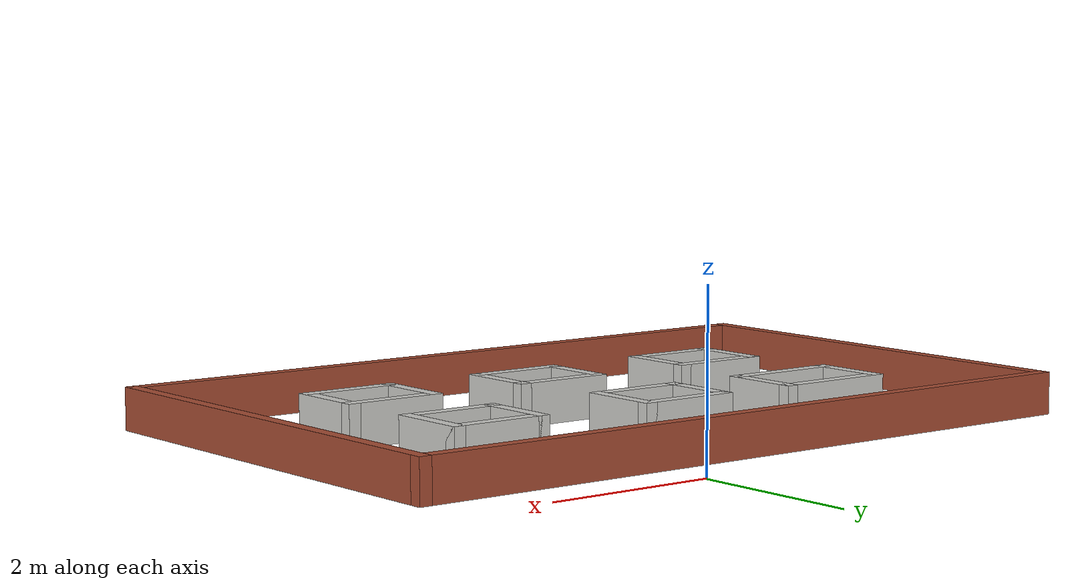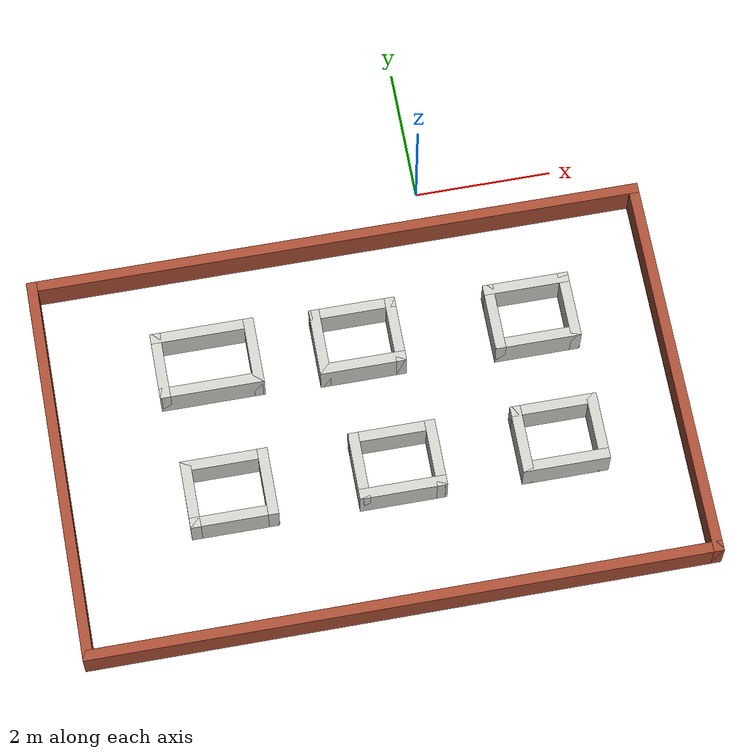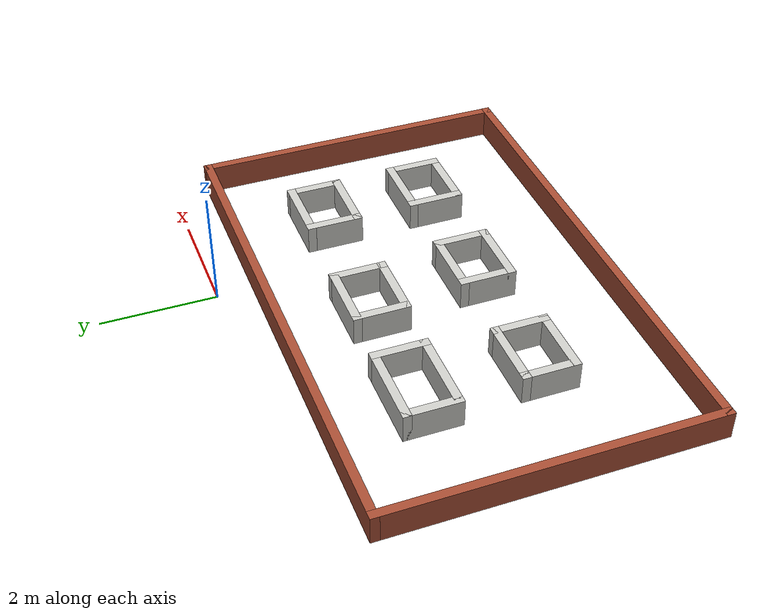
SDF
<?xml version='1.0'?>
<sdf version='1.7'>
  <model name='Maze_1_new'>
    <pose>-1.345 -3.1825 0 0 -0 0</pose>
    <link name='Wall_10'>
      <collision name='Wall_10_Collision'>
        <geometry>
          <box>
            <size>1 0.15 0.5</size>
          </box>
        </geometry>
        <pose>0 0 0.25 0 -0 0</pose>
      </collision>
      <visual name='Wall_10_Visual'>
        <pose>0 0 0.25 0 -0 0</pose>
        <geometry>
          <box>
            <size>1 0.15 0.5</size>
          </box>
        </geometry>
        <material>
          <script>
            <uri>file://media/materials/scripts/gazebo.material</uri>
            <name>Gazebo/CeilingTiled</name>
          </script>
          <ambient>1 1 1 1</ambient>
        </material>
        <meta>
          <layer>0</layer>
        </meta>
      </visual>
      <pose>-1.445 0.9575 0 0 -0 1.5708</pose>
    </link>
    <link name='Wall_11'>
      <collision name='Wall_11_Collision'>
        <geometry>
          <box>
            <size>1.5 0.15 0.5</size>
          </box>
        </geometry>
        <pose>0 0 0.25 0 -0 0</pose>
      </collision>
      <visual name='Wall_11_Visual'>
        <pose>0 0 0.25 0 -0 0</pose>
        <geometry>
          <box>
            <size>1.5 0.15 0.5</size>
          </box>
        </geometry>
        <material>
          <script>
            <uri>file://media/materials/scripts/gazebo.material</uri>
            <name>Gazebo/CeilingTiled</name>
          </script>
          <ambient>1 1 1 1</ambient>
        </material>
        <meta>
          <layer>0</layer>
        </meta>
      </visual>
      <pose>-2.12 1.3825 0 0 -0 3.14159</pose>
    </link>
    <link name='Wall_13'>
      <collision name='Wall_13_Collision'>
        <geometry>
          <box>
            <size>1 0.15 0.5</size>
          </box>
        </geometry>
        <pose>0 0 0.25 0 -0 0</pose>
      </collision>
      <visual name='Wall_13_Visual'>
        <pose>0 0 0.25 0 -0 0</pose>
        <geometry>
          <box>
            <size>1 0.15 0.5</size>
          </box>
        </geometry>
        <material>
          <script>
            <uri>file://media/materials/scripts/gazebo.material</uri>
            <name>Gazebo/CeilingTiled</name>
          </script>
          <ambient>1 1 1 1</ambient>
        </material>
        <meta>
          <layer>0</layer>
        </meta>
      </visual>
      <pose>-2.675 -1.0425 0 0 -0 -1.5708</pose>
    </link>
    <link name='Wall_14'>
      <collision name='Wall_14_Collision'>
        <geometry>
          <box>
            <size>1.25 0.15 0.5</size>
          </box>
        </geometry>
        <pose>0 0 0.25 0 -0 0</pose>
      </collision>
      <visual name='Wall_14_Visual'>
        <pose>0 0 0.25 0 -0 0</pose>
        <geometry>
          <box>
            <size>1.25 0.15 0.5</size>
          </box>
        </geometry>
        <material>
          <script>
            <uri>file://media/materials/scripts/gazebo.material</uri>
            <name>Gazebo/CeilingTiled</name>
          </script>
          <ambient>1 1 1 1</ambient>
        </material>
        <meta>
          <layer>0</layer>
        </meta>
      </visual>
      <pose>-2.125 -1.4675 0 0 -0 0</pose>
    </link>
    <link name='Wall_15'>
      <collision name='Wall_15_Collision'>
        <geometry>
          <box>
            <size>1 0.15 0.5</size>
          </box>
        </geometry>
        <pose>0 0 0.25 0 -0 0</pose>
      </collision>
      <visual name='Wall_15_Visual'>
        <pose>0 0 0.25 0 -0 0</pose>
        <geometry>
          <box>
            <size>1 0.15 0.5</size>
          </box>
        </geometry>
        <material>
          <script>
            <uri>file://media/materials/scripts/gazebo.material</uri>
            <name>Gazebo/CeilingTiled</name>
          </script>
          <ambient>1 1 1 1</ambient>
        </material>
        <meta>
          <layer>0</layer>
        </meta>
      </visual>
      <pose>-1.575 -1.0425 0 0 -0 1.5708</pose>
    </link>
    <link name='Wall_16'>
      <collision name='Wall_16_Collision'>
        <geometry>
          <box>
            <size>1.25 0.15 0.5</size>
          </box>
        </geometry>
        <pose>0 0 0.25 0 -0 0</pose>
      </collision>
      <visual name='Wall_16_Visual'>
        <pose>0 0 0.25 0 -0 0</pose>
        <geometry>
          <box>
            <size>1.25 0.15 0.5</size>
          </box>
        </geometry>
        <material>
          <script>
            <uri>file://media/materials/scripts/gazebo.material</uri>
            <name>Gazebo/CeilingTiled</name>
          </script>
          <ambient>1 1 1 1</ambient>
        </material>
        <meta>
          <layer>0</layer>
        </meta>
      </visual>
      <pose>-2.125 -0.6175 0 0 -0 3.14159</pose>
    </link>
    <link name='Wall_18'>
      <collision name='Wall_18_Collision'>
        <geometry>
          <box>
            <size>1 0.15 0.5</size>
          </box>
        </geometry>
        <pose>0 0 0.25 0 -0 0</pose>
      </collision>
      <visual name='Wall_18_Visual'>
        <pose>0 0 0.25 0 -0 0</pose>
        <geometry>
          <box>
            <size>1 0.15 0.5</size>
          </box>
        </geometry>
        <material>
          <script>
            <uri>file://media/materials/scripts/gazebo.material</uri>
            <name>Gazebo/CeilingTiled</name>
          </script>
          <ambient>1 1 1 1</ambient>
        </material>
        <meta>
          <layer>0</layer>
        </meta>
      </visual>
      <pose>-0.275 -1.0425 0 0 -0 -1.5708</pose>
    </link>
    <link name='Wall_19'>
      <collision name='Wall_19_Collision'>
        <geometry>
          <box>
            <size>1.25 0.15 0.5</size>
          </box>
        </geometry>
        <pose>0 0 0.25 0 -0 0</pose>
      </collision>
      <visual name='Wall_19_Visual'>
        <pose>0 0 0.25 0 -0 0</pose>
        <geometry>
          <box>
            <size>1.25 0.15 0.5</size>
          </box>
        </geometry>
        <material>
          <script>
            <uri>file://media/materials/scripts/gazebo.material</uri>
            <name>Gazebo/CeilingTiled</name>
          </script>
          <ambient>1 1 1 1</ambient>
        </material>
        <meta>
          <layer>0</layer>
        </meta>
      </visual>
      <pose>0.275 -1.4675 0 0 -0 0</pose>
    </link>
    <link name='Wall_20'>
      <collision name='Wall_20_Collision'>
        <geometry>
          <box>
            <size>1 0.15 0.5</size>
          </box>
        </geometry>
        <pose>0 0 0.25 0 -0 0</pose>
      </collision>
      <visual name='Wall_20_Visual'>
        <pose>0 0 0.25 0 -0 0</pose>
        <geometry>
          <box>
            <size>1 0.15 0.5</size>
          </box>
        </geometry>
        <material>
          <script>
            <uri>file://media/materials/scripts/gazebo.material</uri>
            <name>Gazebo/CeilingTiled</name>
          </script>
          <ambient>1 1 1 1</ambient>
        </material>
        <meta>
          <layer>0</layer>
        </meta>
      </visual>
      <pose>0.825 -1.0425 0 0 -0 1.5708</pose>
    </link>
    <link name='Wall_21'>
      <collision name='Wall_21_Collision'>
        <geometry>
          <box>
            <size>1.25 0.15 0.5</size>
          </box>
        </geometry>
        <pose>0 0 0.25 0 -0 0</pose>
      </collision>
      <visual name='Wall_21_Visual'>
        <pose>0 0 0.25 0 -0 0</pose>
        <geometry>
          <box>
            <size>1.25 0.15 0.5</size>
          </box>
        </geometry>
        <material>
          <script>
            <uri>file://media/materials/scripts/gazebo.material</uri>
            <name>Gazebo/CeilingTiled</name>
          </script>
          <ambient>1 1 1 1</ambient>
        </material>
        <meta>
          <layer>0</layer>
        </meta>
      </visual>
      <pose>0.275 -0.6175 0 0 -0 3.14159</pose>
    </link>
    <link name='Wall_23'>
      <collision name='Wall_23_Collision'>
        <geometry>
          <box>
            <size>1 0.15 0.5</size>
          </box>
        </geometry>
        <pose>0 0 0.25 0 -0 0</pose>
      </collision>
      <visual name='Wall_23_Visual'>
        <pose>0 0 0.25 0 -0 0</pose>
        <geometry>
          <box>
            <size>1 0.15 0.5</size>
          </box>
        </geometry>
        <material>
          <script>
            <uri>file://media/materials/scripts/gazebo.material</uri>
            <name>Gazebo/CeilingTiled</name>
          </script>
          <ambient>1 1 1 1</ambient>
        </material>
        <meta>
          <layer>0</layer>
        </meta>
      </visual>
      <pose>2.055 -1.0525 0 0 -0 -1.5708</pose>
    </link>
    <link name='Wall_24'>
      <collision name='Wall_24_Collision'>
        <geometry>
          <box>
            <size>1.25 0.15 0.5</size>
          </box>
        </geometry>
        <pose>0 0 0.25 0 -0 0</pose>
      </collision>
      <visual name='Wall_24_Visual'>
        <pose>0 0 0.25 0 -0 0</pose>
        <geometry>
          <box>
            <size>1.25 0.15 0.5</size>
          </box>
        </geometry>
        <material>
          <script>
            <uri>file://media/materials/scripts/gazebo.material</uri>
            <name>Gazebo/CeilingTiled</name>
          </script>
          <ambient>1 1 1 1</ambient>
        </material>
        <meta>
          <layer>0</layer>
        </meta>
      </visual>
      <pose>2.605 -1.4775 0 0 -0 0</pose>
    </link>
    <link name='Wall_25'>
      <collision name='Wall_25_Collision'>
        <geometry>
          <box>
            <size>1 0.15 0.5</size>
          </box>
        </geometry>
        <pose>0 0 0.25 0 -0 0</pose>
      </collision>
      <visual name='Wall_25_Visual'>
        <pose>0 0 0.25 0 -0 0</pose>
        <geometry>
          <box>
            <size>1 0.15 0.5</size>
          </box>
        </geometry>
        <material>
          <script>
            <uri>file://media/materials/scripts/gazebo.material</uri>
            <name>Gazebo/CeilingTiled</name>
          </script>
          <ambient>1 1 1 1</ambient>
        </material>
        <meta>
          <layer>0</layer>
        </meta>
      </visual>
      <pose>3.155 -1.0525 0 0 -0 1.5708</pose>
    </link>
    <link name='Wall_26'>
      <collision name='Wall_26_Collision'>
        <geometry>
          <box>
            <size>1.25 0.15 0.5</size>
          </box>
        </geometry>
        <pose>0 0 0.25 0 -0 0</pose>
      </collision>
      <visual name='Wall_26_Visual'>
        <pose>0 0 0.25 0 -0 0</pose>
        <geometry>
          <box>
            <size>1.25 0.15 0.5</size>
          </box>
        </geometry>
        <material>
          <script>
            <uri>file://media/materials/scripts/gazebo.material</uri>
            <name>Gazebo/CeilingTiled</name>
          </script>
          <ambient>1 1 1 1</ambient>
        </material>
        <meta>
          <layer>0</layer>
        </meta>
      </visual>
      <pose>2.605 -0.6275 0 0 -0 3.14159</pose>
    </link>
    <link name='Wall_28'>
      <collision name='Wall_28_Collision'>
        <geometry>
          <box>
            <size>1 0.15 0.5</size>
          </box>
        </geometry>
        <pose>0 0 0.25 0 -0 0</pose>
      </collision>
      <visual name='Wall_28_Visual'>
        <pose>0 0 0.25 0 -0 0</pose>
        <geometry>
          <box>
            <size>1 0.15 0.5</size>
          </box>
        </geometry>
        <material>
          <script>
            <uri>file://media/materials/scripts/gazebo.material</uri>
            <name>Gazebo/CeilingTiled</name>
          </script>
          <ambient>1 1 1 1</ambient>
        </material>
        <meta>
          <layer>0</layer>
        </meta>
      </visual>
      <pose>-0.495 0.9175 0 0 -0 -1.5708</pose>
    </link>
    <link name='Wall_29'>
      <collision name='Wall_29_Collision'>
        <geometry>
          <box>
            <size>1.25 0.15 0.5</size>
          </box>
        </geometry>
        <pose>0 0 0.25 0 -0 0</pose>
      </collision>
      <visual name='Wall_29_Visual'>
        <pose>0 0 0.25 0 -0 0</pose>
        <geometry>
          <box>
            <size>1.25 0.15 0.5</size>
          </box>
        </geometry>
        <material>
          <script>
            <uri>file://media/materials/scripts/gazebo.material</uri>
            <name>Gazebo/CeilingTiled</name>
          </script>
          <ambient>1 1 1 1</ambient>
        </material>
        <meta>
          <layer>0</layer>
        </meta>
      </visual>
      <pose>0.055 0.4925 0 0 -0 0</pose>
    </link>
    <link name='Wall_3'>
      <collision name='Wall_3_Collision'>
        <geometry>
          <box>
            <size>5.75 0.15 0.5</size>
          </box>
        </geometry>
        <pose>0 0 0.25 0 -0 0</pose>
      </collision>
      <visual name='Wall_3_Visual'>
        <pose>0 0 0.25 0 -0 0</pose>
        <geometry>
          <box>
            <size>5.75 0.15 0.5</size>
          </box>
        </geometry>
        <material>
          <script>
            <uri>file://media/materials/scripts/gazebo.material</uri>
            <name>Gazebo/Bricks</name>
          </script>
          <ambient>1 1 1 1</ambient>
        </material>
        <meta>
          <layer>0</layer>
        </meta>
      </visual>
      <pose>-4.425 -0.3075 0 0 -0 -1.5708</pose>
    </link>
    <link name='Wall_30'>
      <collision name='Wall_30_Collision'>
        <geometry>
          <box>
            <size>1 0.15 0.5</size>
          </box>
        </geometry>
        <pose>0 0 0.25 0 -0 0</pose>
      </collision>
      <visual name='Wall_30_Visual'>
        <pose>0 0 0.25 0 -0 0</pose>
        <geometry>
          <box>
            <size>1 0.15 0.5</size>
          </box>
        </geometry>
        <material>
          <script>
            <uri>file://media/materials/scripts/gazebo.material</uri>
            <name>Gazebo/CeilingTiled</name>
          </script>
          <ambient>1 1 1 1</ambient>
        </material>
        <meta>
          <layer>0</layer>
        </meta>
      </visual>
      <pose>0.605 0.9175 0 0 -0 1.5708</pose>
    </link>
    <link name='Wall_31'>
      <collision name='Wall_31_Collision'>
        <geometry>
          <box>
            <size>1.25 0.15 0.5</size>
          </box>
        </geometry>
        <pose>0 0 0.25 0 -0 0</pose>
      </collision>
      <visual name='Wall_31_Visual'>
        <pose>0 0 0.25 0 -0 0</pose>
        <geometry>
          <box>
            <size>1.25 0.15 0.5</size>
          </box>
        </geometry>
        <material>
          <script>
            <uri>file://media/materials/scripts/gazebo.material</uri>
            <name>Gazebo/CeilingTiled</name>
          </script>
          <ambient>1 1 1 1</ambient>
        </material>
        <meta>
          <layer>0</layer>
        </meta>
      </visual>
      <pose>0.055 1.3425 0 0 -0 3.14159</pose>
    </link>
    <link name='Wall_33'>
      <collision name='Wall_33_Collision'>
        <geometry>
          <box>
            <size>1 0.15 0.5</size>
          </box>
        </geometry>
        <pose>0 0 0.25 0 -0 0</pose>
      </collision>
      <visual name='Wall_33_Visual'>
        <pose>0 0 0.25 0 -0 0</pose>
        <geometry>
          <box>
            <size>1 0.15 0.5</size>
          </box>
        </geometry>
        <material>
          <script>
            <uri>file://media/materials/scripts/gazebo.material</uri>
            <name>Gazebo/CeilingTiled</name>
          </script>
          <ambient>1 1 1 1</ambient>
        </material>
        <meta>
          <layer>0</layer>
        </meta>
      </visual>
      <pose>2.035 0.8575 0 0 -0 -1.5708</pose>
    </link>
    <link name='Wall_34'>
      <collision name='Wall_34_Collision'>
        <geometry>
          <box>
            <size>1.25 0.15 0.5</size>
          </box>
        </geometry>
        <pose>0 0 0.25 0 -0 0</pose>
      </collision>
      <visual name='Wall_34_Visual'>
        <pose>0 0 0.25 0 -0 0</pose>
        <geometry>
          <box>
            <size>1.25 0.15 0.5</size>
          </box>
        </geometry>
        <material>
          <script>
            <uri>file://media/materials/scripts/gazebo.material</uri>
            <name>Gazebo/CeilingTiled</name>
          </script>
          <ambient>1 1 1 1</ambient>
        </material>
        <meta>
          <layer>0</layer>
        </meta>
      </visual>
      <pose>2.585 0.4325 0 0 -0 0</pose>
    </link>
    <link name='Wall_35'>
      <collision name='Wall_35_Collision'>
        <geometry>
          <box>
            <size>1 0.15 0.5</size>
          </box>
        </geometry>
        <pose>0 0 0.25 0 -0 0</pose>
      </collision>
      <visual name='Wall_35_Visual'>
        <pose>0 0 0.25 0 -0 0</pose>
        <geometry>
          <box>
            <size>1 0.15 0.5</size>
          </box>
        </geometry>
        <material>
          <script>
            <uri>file://media/materials/scripts/gazebo.material</uri>
            <name>Gazebo/CeilingTiled</name>
          </script>
          <ambient>1 1 1 1</ambient>
        </material>
        <meta>
          <layer>0</layer>
        </meta>
      </visual>
      <pose>3.135 0.8575 0 0 -0 1.5708</pose>
    </link>
    <link name='Wall_36'>
      <collision name='Wall_36_Collision'>
        <geometry>
          <box>
            <size>1.25 0.15 0.5</size>
          </box>
        </geometry>
        <pose>0 0 0.25 0 -0 0</pose>
      </collision>
      <visual name='Wall_36_Visual'>
        <pose>0 0 0.25 0 -0 0</pose>
        <geometry>
          <box>
            <size>1.25 0.15 0.5</size>
          </box>
        </geometry>
        <material>
          <script>
            <uri>file://media/materials/scripts/gazebo.material</uri>
            <name>Gazebo/CeilingTiled</name>
          </script>
          <ambient>1 1 1 1</ambient>
        </material>
        <meta>
          <layer>0</layer>
        </meta>
      </visual>
      <pose>2.585 1.2825 0 0 -0 3.14159</pose>
    </link>
    <link name='Wall_4'>
      <collision name='Wall_4_Collision'>
        <geometry>
          <box>
            <size>9 0.15 0.5</size>
          </box>
        </geometry>
        <pose>0 0 0.25 0 -0 0</pose>
      </collision>
      <visual name='Wall_4_Visual'>
        <pose>0 0 0.25 0 -0 0</pose>
        <geometry>
          <box>
            <size>9 0.15 0.5</size>
          </box>
        </geometry>
        <material>
          <script>
            <uri>file://media/materials/scripts/gazebo.material</uri>
            <name>Gazebo/Bricks</name>
          </script>
          <ambient>1 1 1 1</ambient>
        </material>
        <meta>
          <layer>0</layer>
        </meta>
      </visual>
      <pose>0 -3.1075 0 0 -0 0</pose>
    </link>
    <link name='Wall_5'>
      <collision name='Wall_5_Collision'>
        <geometry>
          <box>
            <size>5.75 0.15 0.5</size>
          </box>
        </geometry>
        <pose>0 0 0.25 0 -0 0</pose>
      </collision>
      <visual name='Wall_5_Visual'>
        <pose>0 0 0.25 0 -0 0</pose>
        <geometry>
          <box>
            <size>5.75 0.15 0.5</size>
          </box>
        </geometry>
        <material>
          <script>
            <uri>file://media/materials/scripts/gazebo.material</uri>
            <name>Gazebo/Bricks</name>
          </script>
          <ambient>1 1 1 1</ambient>
        </material>
        <meta>
          <layer>0</layer>
        </meta>
      </visual>
      <pose>4.425 -0.3075 0 0 -0 1.5708</pose>
    </link>
    <link name='Wall_6'>
      <collision name='Wall_6_Collision'>
        <geometry>
          <box>
            <size>9 0.15 0.5</size>
          </box>
        </geometry>
        <pose>0 0 0.25 0 -0 0</pose>
      </collision>
      <visual name='Wall_6_Visual'>
        <pose>0 0 0.25 0 -0 0</pose>
        <geometry>
          <box>
            <size>9 0.15 0.5</size>
          </box>
        </geometry>
        <material>
          <script>
            <uri>file://media/materials/scripts/gazebo.material</uri>
            <name>Gazebo/Bricks</name>
          </script>
          <ambient>1 1 1 1</ambient>
        </material>
        <meta>
          <layer>0</layer>
        </meta>
      </visual>
      <pose>0 2.4925 0 0 -0 3.14159</pose>
    </link>
    <link name='Wall_8'>
      <collision name='Wall_8_Collision'>
        <geometry>
          <box>
            <size>1 0.15 0.5</size>
          </box>
        </geometry>
        <pose>0 0 0.25 0 -0 0</pose>
      </collision>
      <visual name='Wall_8_Visual'>
        <pose>0 0 0.25 0 -0 0</pose>
        <geometry>
          <box>
            <size>1 0.15 0.5</size>
          </box>
        </geometry>
        <material>
          <script>
            <uri>file://media/materials/scripts/gazebo.material</uri>
            <name>Gazebo/CeilingTiled</name>
          </script>
          <ambient>1 1 1 1</ambient>
        </material>
        <meta>
          <layer>0</layer>
        </meta>
      </visual>
      <pose>-2.795 0.9575 0 0 -0 -1.5708</pose>
    </link>
    <link name='Wall_9'>
      <collision name='Wall_9_Collision'>
        <geometry>
          <box>
            <size>1.5 0.15 0.5</size>
          </box>
        </geometry>
        <pose>0 0 0.25 0 -0 0</pose>
      </collision>
      <visual name='Wall_9_Visual'>
        <pose>0 0 0.25 0 -0 0</pose>
        <geometry>
          <box>
            <size>1.5 0.15 0.5</size>
          </box>
        </geometry>
        <material>
          <script>
            <uri>file://media/materials/scripts/gazebo.material</uri>
            <name>Gazebo/CeilingTiled</name>
          </script>
          <ambient>1 1 1 1</ambient>
        </material>
        <meta>
          <layer>0</layer>
        </meta>
      </visual>
      <pose>-2.12 0.5325 0 0 -0 0</pose>
    </link>
    <static>1</static>
  </model>
</sdf>
